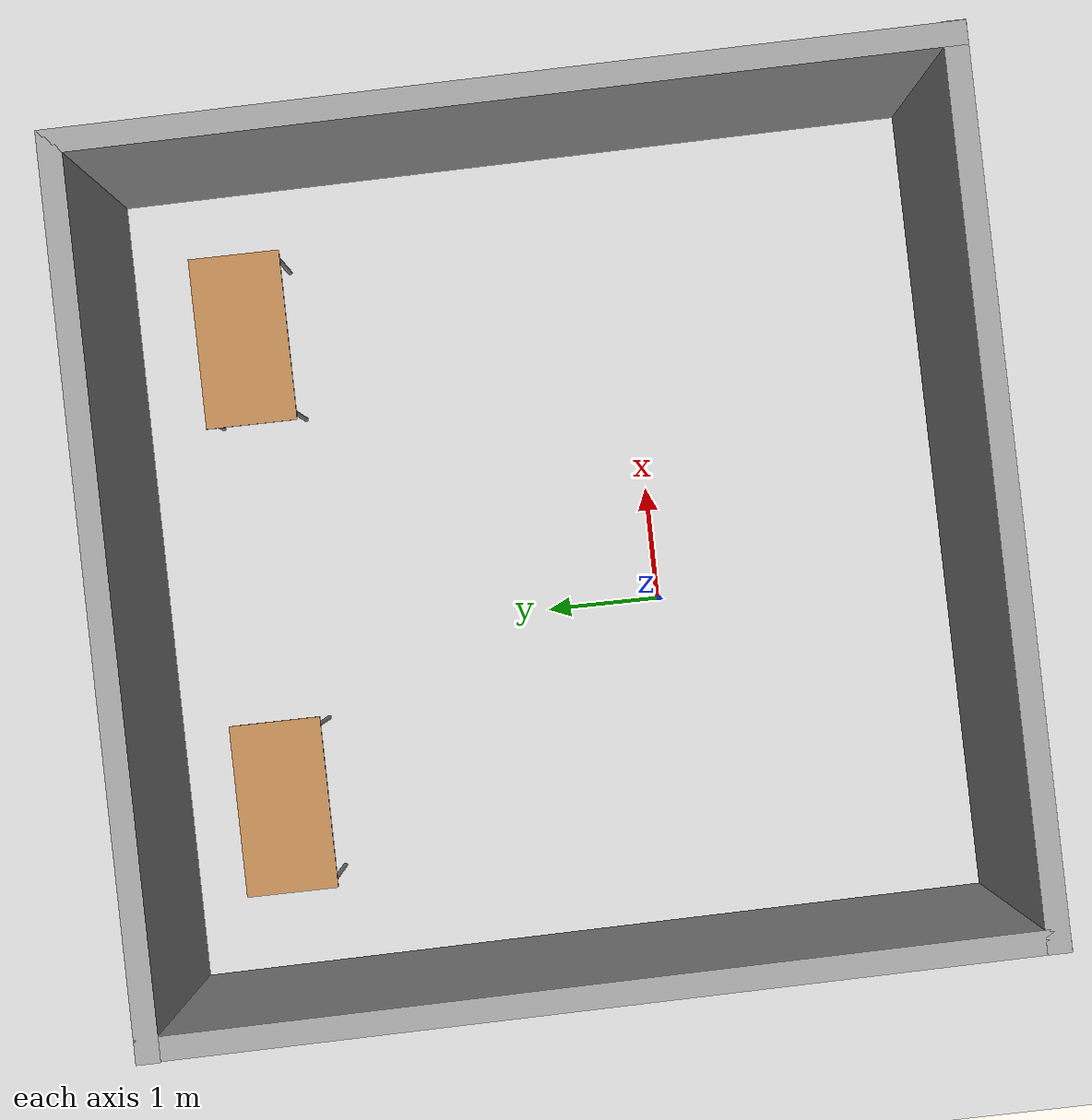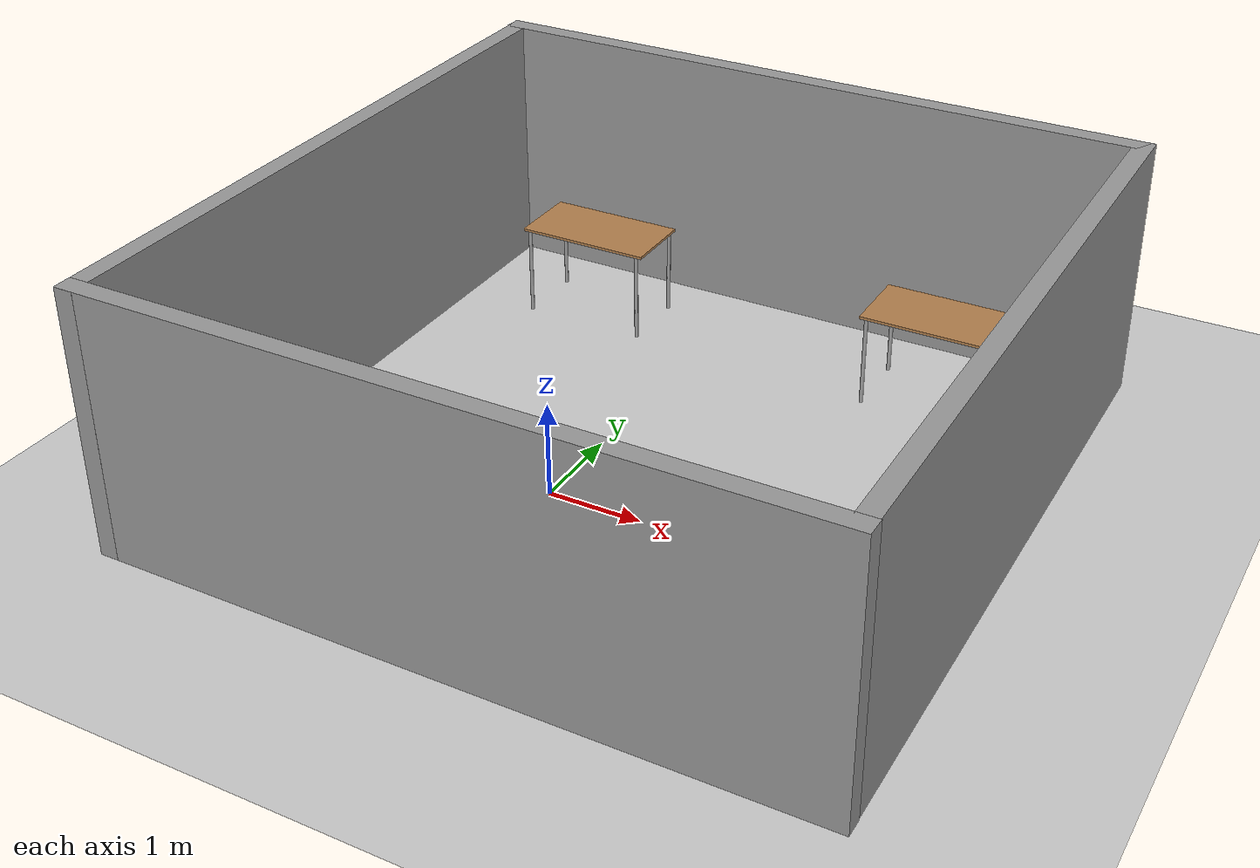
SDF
<sdf version="1.7">
 <world name="default">
  <plugin name="gazebo_ros_state" filename="libgazebo_ros_state.so">
   <ros><namespace>/gazebo_spawner</namespace></ros>
   <update_rate>1.0</update_rate>
  </plugin>
  <model name="ground_plane">
   <static>1</static>
   <link name="link">
    <collision name="collision">
     <geometry><plane><normal>0 0 1</normal><size>100 100</size></plane></geometry>
     <surface>
      <contact><collide_bitmask>65535</collide_bitmask></contact>
      <friction><ode><mu>100</mu><mu2>50</mu2></ode></friction>
     </surface>
    </collision>
    <visual name="visual">
     <cast_shadows>0</cast_shadows>
     <geometry><plane><normal>0 0 1</normal><size>100 100</size></plane></geometry>
     <material>
      <script><uri>file://media/materials/scripts/gazebo.material</uri><name>Gazebo/Grey</name></script>
     </material>
    </visual>
   </link>
  </model>
  <light name="sun" type="directional">
   <pose>0 0 10 0 -0 0</pose>
   <diffuse>0.8 0.8 0.8 1</diffuse>
   <specular>0.2 0.2 0.2 1</specular>
   <attenuation>
    <range>1000</range>
    <constant>0.9</constant>
    <linear>0.01</linear>
    <quadratic>0.001</quadratic>
   </attenuation>
   <direction>-0.5 0.1 -0.9</direction>
   <spot><inner_angle>0</inner_angle><outer_angle>0</outer_angle><falloff>0</falloff></spot>
  </light>
  <gravity>0 0 -9.8</gravity>
  <magnetic_field>6e-06 2.3e-05 -4.2e-05</magnetic_field>
  <atmosphere type="adiabatic"/>
  <physics type="ode">
   <max_step_size>0.001</max_step_size>
   <real_time_factor>1</real_time_factor>
   <real_time_update_rate>1000</real_time_update_rate>
  </physics>
  <scene><ambient>0.4 0.4 0.4 1</ambient><background>0.7 0.7 0.7 1</background><shadows>1</shadows></scene>
  <audio><device>default</device></audio>
  <spherical_coordinates>
   <surface_model>EARTH_WGS84</surface_model>
   <latitude_deg>0</latitude_deg>
   <longitude_deg>0</longitude_deg>
   <elevation>0</elevation>
   <heading_deg>0</heading_deg>
  </spherical_coordinates>
  <model name="grey_wall">
   <static>1</static>
   <link name="link">
    <pose>0 0 1.4 0 -0 0</pose>
    <collision name="collision"><geometry><box><size>7.5 0.2 2.8</size></box></geometry></collision>
    <visual name="visual">
     <cast_shadows>0</cast_shadows>
     <geometry><box><size>7.5 0.2 2.8</size></box></geometry>
     <material>
      <script>
       <uri>model://grey_wall/materials/scripts</uri>
       <uri>model://grey_wall/materials/textures</uri>
       <name>vrc/grey_wall</name>
      </script>
     </material>
    </visual>
   </link>
   <pose>0.620102 -2.74183 0 0 -0 0</pose>
  </model>
  <model name="grey_wall_0">
   <static>1</static>
   <link name="link">
    <pose>0 0 1.4 0 -0 0</pose>
    <collision name="collision"><geometry><box><size>7.5 0.2 2.8</size></box></geometry></collision>
    <visual name="visual">
     <cast_shadows>0</cast_shadows>
     <geometry><box><size>7.5 0.2 2.8</size></box></geometry>
     <material>
      <script>
       <uri>model://grey_wall/materials/scripts</uri>
       <uri>model://grey_wall/materials/textures</uri>
       <name>vrc/grey_wall</name>
      </script>
     </material>
    </visual>
   </link>
   <pose>0.551648 4.56164 0 0 -0 0</pose>
  </model>
  <model name="grey_wall_1_clone">
   <static>1</static>
   <link name="link">
    <pose>0 0 1.4 0 -0 0</pose>
    <collision name="collision"><geometry><box><size>7.5 0.2 2.8</size></box></geometry></collision>
    <visual name="visual">
     <cast_shadows>0</cast_shadows>
     <geometry><box><size>7.5 0.2 2.8</size></box></geometry>
     <material>
      <script>
       <uri>model://grey_wall/materials/scripts</uri>
       <uri>model://grey_wall/materials/textures</uri>
       <name>vrc/grey_wall</name>
      </script>
     </material>
    </visual>
   </link>
   <pose>-3.05926 0.907046 0 0 0 -1.56248</pose>
  </model>
  <model name="grey_wall_1_clone_clone">
   <static>1</static>
   <link name="link">
    <pose>0 0 1.4 0 -0 0</pose>
    <collision name="collision"><geometry><box><size>7.5 0.2 2.8</size></box></geometry></collision>
    <visual name="visual">
     <cast_shadows>0</cast_shadows>
     <geometry><box><size>7.5 0.2 2.8</size></box></geometry>
     <material>
      <script>
       <uri>model://grey_wall/materials/scripts</uri>
       <uri>model://grey_wall/materials/textures</uri>
       <name>vrc/grey_wall</name>
      </script>
     </material>
    </visual>
   </link>
   <pose>4.23532 0.909389 0 0 0 -1.56248</pose>
  </model>
  <model name="table">
   <static>1</static>
   <link name="link">
    <collision name="surface">
     <pose>0 0 1 0 -0 0</pose>
     <geometry><box><size>1.5 0.8 0.03</size></box></geometry>
     <surface><friction><ode><mu>0.6</mu><mu2>0.6</mu2></ode></friction></surface>
    </collision>
    <visual name="visual1">
     <pose>0 0 1 0 -0 0</pose>
     <geometry><box><size>1.5 0.8 0.03</size></box></geometry>
     <material>
      <script><uri>file://media/materials/scripts/gazebo.material</uri><name>Gazebo/Wood</name></script>
     </material>
    </visual>
    <collision name="front_left_leg">
     <pose>0.68 0.38 0.5 0 -0 0</pose>
     <geometry><cylinder><radius>0.02</radius><length>1</length></cylinder></geometry>
    </collision>
    <visual name="front_left_leg">
     <pose>0.68 0.38 0.5 0 -0 0</pose>
     <geometry><cylinder><radius>0.02</radius><length>1</length></cylinder></geometry>
     <material>
      <script><uri>file://media/materials/scripts/gazebo.material</uri><name>Gazebo/Grey</name></script>
     </material>
    </visual>
    <collision name="front_right_leg">
     <pose>0.68 -0.38 0.5 0 -0 0</pose>
     <geometry><cylinder><radius>0.02</radius><length>1</length></cylinder></geometry>
    </collision>
    <visual name="front_right_leg">
     <pose>0.68 -0.38 0.5 0 -0 0</pose>
     <geometry><cylinder><radius>0.02</radius><length>1</length></cylinder></geometry>
     <material>
      <script><uri>file://media/materials/scripts/gazebo.material</uri><name>Gazebo/Grey</name></script>
     </material>
    </visual>
    <collision name="back_right_leg">
     <pose>-0.68 -0.38 0.5 0 -0 0</pose>
     <geometry><cylinder><radius>0.02</radius><length>1</length></cylinder></geometry>
    </collision>
    <visual name="back_right_leg">
     <pose>-0.68 -0.38 0.5 0 -0 0</pose>
     <geometry><cylinder><radius>0.02</radius><length>1</length></cylinder></geometry>
     <material>
      <script><uri>file://media/materials/scripts/gazebo.material</uri><name>Gazebo/Grey</name></script>
     </material>
    </visual>
    <collision name="back_left_leg">
     <pose>-0.68 0.38 0.5 0 -0 0</pose>
     <geometry><cylinder><radius>0.02</radius><length>1</length></cylinder></geometry>
    </collision>
    <visual name="back_left_leg">
     <pose>-0.68 0.38 0.5 0 -0 0</pose>
     <geometry><cylinder><radius>0.02</radius><length>1</length></cylinder></geometry>
     <material>
      <script><uri>file://media/materials/scripts/gazebo.material</uri><name>Gazebo/Grey</name></script>
     </material>
    </visual>
   </link>
   <pose>2.66745 3.41148 0 0 -0 0</pose>
  </model>
  <model name="table_0">
   <static>1</static>
   <link name="link">
    <collision name="surface">
     <pose>0 0 1 0 -0 0</pose>
     <geometry><box><size>1.5 0.8 0.03</size></box></geometry>
     <surface><friction><ode><mu>0.6</mu><mu2>0.6</mu2></ode></friction></surface>
    </collision>
    <visual name="visual1">
     <pose>0 0 1 0 -0 0</pose>
     <geometry><box><size>1.5 0.8 0.03</size></box></geometry>
     <material>
      <script><uri>file://media/materials/scripts/gazebo.material</uri><name>Gazebo/Wood</name></script>
     </material>
    </visual>
    <collision name="front_left_leg">
     <pose>0.68 0.38 0.5 0 -0 0</pose>
     <geometry><cylinder><radius>0.02</radius><length>1</length></cylinder></geometry>
    </collision>
    <visual name="front_left_leg">
     <pose>0.68 0.38 0.5 0 -0 0</pose>
     <geometry><cylinder><radius>0.02</radius><length>1</length></cylinder></geometry>
     <material>
      <script><uri>file://media/materials/scripts/gazebo.material</uri><name>Gazebo/Grey</name></script>
     </material>
    </visual>
    <collision name="front_right_leg">
     <pose>0.68 -0.38 0.5 0 -0 0</pose>
     <geometry><cylinder><radius>0.02</radius><length>1</length></cylinder></geometry>
    </collision>
    <visual name="front_right_leg">
     <pose>0.68 -0.38 0.5 0 -0 0</pose>
     <geometry><cylinder><radius>0.02</radius><length>1</length></cylinder></geometry>
     <material>
      <script><uri>file://media/materials/scripts/gazebo.material</uri><name>Gazebo/Grey</name></script>
     </material>
    </visual>
    <collision name="back_right_leg">
     <pose>-0.68 -0.38 0.5 0 -0 0</pose>
     <geometry><cylinder><radius>0.02</radius><length>1</length></cylinder></geometry>
    </collision>
    <visual name="back_right_leg">
     <pose>-0.68 -0.38 0.5 0 -0 0</pose>
     <geometry><cylinder><radius>0.02</radius><length>1</length></cylinder></geometry>
     <material>
      <script><uri>file://media/materials/scripts/gazebo.material</uri><name>Gazebo/Grey</name></script>
     </material>
    </visual>
    <collision name="back_left_leg">
     <pose>-0.68 0.38 0.5 0 -0 0</pose>
     <geometry><cylinder><radius>0.02</radius><length>1</length></cylinder></geometry>
    </collision>
    <visual name="back_left_leg">
     <pose>-0.68 0.38 0.5 0 -0 0</pose>
     <geometry><cylinder><radius>0.02</radius><length>1</length></cylinder></geometry>
     <material>
      <script><uri>file://media/materials/scripts/gazebo.material</uri><name>Gazebo/Grey</name></script>
     </material>
    </visual>
   </link>
   <pose>-1.44329 3.49919 0 0 -0 0</pose>
  </model>
 </world>
</sdf>
